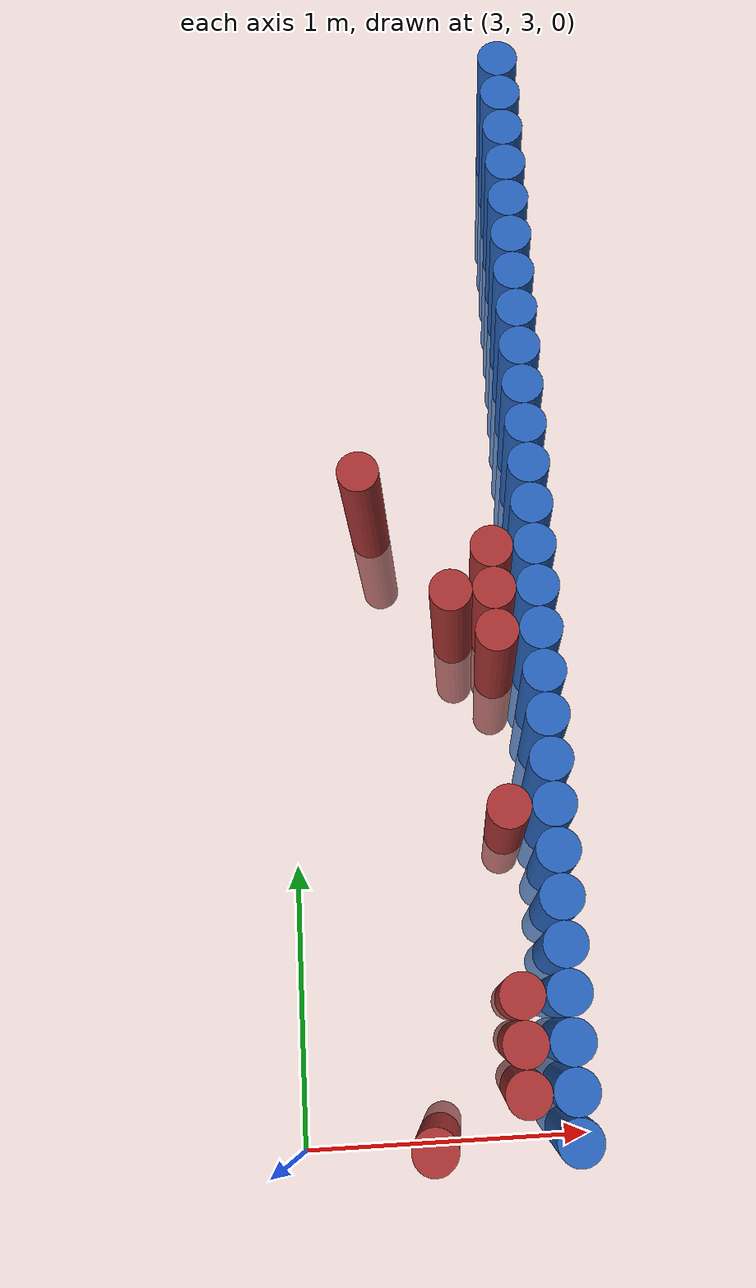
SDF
<sdf version="1.6">
 <world name="default">
  <model name="ground_plane">
   <static>1</static>
   <link name="link">
    <collision name="collision">
     <geometry><plane><normal>0 0 1</normal><size>100 100</size></plane></geometry>
     <surface><friction><ode><mu>100</mu><mu2>50</mu2></ode></friction></surface>
    </collision>
    <visual name="visual">
     <cast_shadows>0</cast_shadows>
     <geometry><plane><normal>0 0 1</normal><size>100 100</size></plane></geometry>
     <material>
      <script><uri>file://media/materials/scripts/gazebo.material</uri><name>Gazebo/Grey</name></script>
     </material>
    </visual>
   </link>
  </model>
  <model name="unit_cylinder_154">
   <static>1</static>
   <pose>3.925000 3.025000 0.000000 0.000000 0.000000 0.000000</pose>
   <link name="link">
    <inertial>
     <mass>1</mass>
     <inertia><ixx>0.145833</ixx><ixy>0</ixy><ixz>0</ixz><iyy>0.145833</iyy><iyz>0</iyz><izz>0.125</izz></inertia>
    </inertial>
    <collision name="collision">
     <geometry><cylinder><radius>0.075000</radius><length>1.5</length></cylinder></geometry>
    </collision>
    <visual name="visual">
     <geometry><cylinder><radius>0.075000</radius><length>1.5</length></cylinder></geometry>
     <material>
      <ambient>0.152000 0.379000 0.720000 1</ambient>
      <diffuse>0.152000 0.379000 0.720000 1</diffuse>
     </material>
     <material>
      <script><name>Gazebo/Grey</name><uri>file://media/materials/scripts/gazebo.material</uri></script>
     </material>
    </visual>
   </link>
  </model>
  <model name="unit_cylinder_156">
   <static>1</static>
   <pose>3.925000 3.175000 0.000000 0.000000 0.000000 0.000000</pose>
   <link name="link">
    <inertial>
     <mass>1</mass>
     <inertia><ixx>0.145833</ixx><ixy>0</ixy><ixz>0</ixz><iyy>0.145833</iyy><iyz>0</iyz><izz>0.125</izz></inertia>
    </inertial>
    <collision name="collision">
     <geometry><cylinder><radius>0.075000</radius><length>1.5</length></cylinder></geometry>
    </collision>
    <visual name="visual">
     <geometry><cylinder><radius>0.075000</radius><length>1.5</length></cylinder></geometry>
     <material>
      <ambient>0.152000 0.379000 0.720000 1</ambient>
      <diffuse>0.152000 0.379000 0.720000 1</diffuse>
     </material>
     <material>
      <script><name>Gazebo/Grey</name><uri>file://media/materials/scripts/gazebo.material</uri></script>
     </material>
    </visual>
   </link>
  </model>
  <model name="unit_cylinder_158">
   <static>1</static>
   <pose>3.925000 3.325000 0.000000 0.000000 0.000000 0.000000</pose>
   <link name="link">
    <inertial>
     <mass>1</mass>
     <inertia><ixx>0.145833</ixx><ixy>0</ixy><ixz>0</ixz><iyy>0.145833</iyy><iyz>0</iyz><izz>0.125</izz></inertia>
    </inertial>
    <collision name="collision">
     <geometry><cylinder><radius>0.075000</radius><length>1.5</length></cylinder></geometry>
    </collision>
    <visual name="visual">
     <geometry><cylinder><radius>0.075000</radius><length>1.5</length></cylinder></geometry>
     <material>
      <ambient>0.152000 0.379000 0.720000 1</ambient>
      <diffuse>0.152000 0.379000 0.720000 1</diffuse>
     </material>
     <material>
      <script><name>Gazebo/Grey</name><uri>file://media/materials/scripts/gazebo.material</uri></script>
     </material>
    </visual>
   </link>
  </model>
  <model name="unit_cylinder_160">
   <static>1</static>
   <pose>3.925000 3.475000 0.000000 0.000000 0.000000 0.000000</pose>
   <link name="link">
    <inertial>
     <mass>1</mass>
     <inertia><ixx>0.145833</ixx><ixy>0</ixy><ixz>0</ixz><iyy>0.145833</iyy><iyz>0</iyz><izz>0.125</izz></inertia>
    </inertial>
    <collision name="collision">
     <geometry><cylinder><radius>0.075000</radius><length>1.5</length></cylinder></geometry>
    </collision>
    <visual name="visual">
     <geometry><cylinder><radius>0.075000</radius><length>1.5</length></cylinder></geometry>
     <material>
      <ambient>0.152000 0.379000 0.720000 1</ambient>
      <diffuse>0.152000 0.379000 0.720000 1</diffuse>
     </material>
     <material>
      <script><name>Gazebo/Grey</name><uri>file://media/materials/scripts/gazebo.material</uri></script>
     </material>
    </visual>
   </link>
  </model>
  <model name="unit_cylinder_162">
   <static>1</static>
   <pose>3.925000 3.625000 0.000000 0.000000 0.000000 0.000000</pose>
   <link name="link">
    <inertial>
     <mass>1</mass>
     <inertia><ixx>0.145833</ixx><ixy>0</ixy><ixz>0</ixz><iyy>0.145833</iyy><iyz>0</iyz><izz>0.125</izz></inertia>
    </inertial>
    <collision name="collision">
     <geometry><cylinder><radius>0.075000</radius><length>1.5</length></cylinder></geometry>
    </collision>
    <visual name="visual">
     <geometry><cylinder><radius>0.075000</radius><length>1.5</length></cylinder></geometry>
     <material>
      <ambient>0.152000 0.379000 0.720000 1</ambient>
      <diffuse>0.152000 0.379000 0.720000 1</diffuse>
     </material>
     <material>
      <script><name>Gazebo/Grey</name><uri>file://media/materials/scripts/gazebo.material</uri></script>
     </material>
    </visual>
   </link>
  </model>
  <model name="unit_cylinder_164">
   <static>1</static>
   <pose>3.925000 3.775000 0.000000 0.000000 0.000000 0.000000</pose>
   <link name="link">
    <inertial>
     <mass>1</mass>
     <inertia><ixx>0.145833</ixx><ixy>0</ixy><ixz>0</ixz><iyy>0.145833</iyy><iyz>0</iyz><izz>0.125</izz></inertia>
    </inertial>
    <collision name="collision">
     <geometry><cylinder><radius>0.075000</radius><length>1.5</length></cylinder></geometry>
    </collision>
    <visual name="visual">
     <geometry><cylinder><radius>0.075000</radius><length>1.5</length></cylinder></geometry>
     <material>
      <ambient>0.152000 0.379000 0.720000 1</ambient>
      <diffuse>0.152000 0.379000 0.720000 1</diffuse>
     </material>
     <material>
      <script><name>Gazebo/Grey</name><uri>file://media/materials/scripts/gazebo.material</uri></script>
     </material>
    </visual>
   </link>
  </model>
  <model name="unit_cylinder_166">
   <static>1</static>
   <pose>3.925000 3.925000 0.000000 0.000000 0.000000 0.000000</pose>
   <link name="link">
    <inertial>
     <mass>1</mass>
     <inertia><ixx>0.145833</ixx><ixy>0</ixy><ixz>0</ixz><iyy>0.145833</iyy><iyz>0</iyz><izz>0.125</izz></inertia>
    </inertial>
    <collision name="collision">
     <geometry><cylinder><radius>0.075000</radius><length>1.5</length></cylinder></geometry>
    </collision>
    <visual name="visual">
     <geometry><cylinder><radius>0.075000</radius><length>1.5</length></cylinder></geometry>
     <material>
      <ambient>0.152000 0.379000 0.720000 1</ambient>
      <diffuse>0.152000 0.379000 0.720000 1</diffuse>
     </material>
     <material>
      <script><name>Gazebo/Grey</name><uri>file://media/materials/scripts/gazebo.material</uri></script>
     </material>
    </visual>
   </link>
  </model>
  <model name="unit_cylinder_168">
   <static>1</static>
   <pose>3.925000 4.075000 0.000000 0.000000 0.000000 0.000000</pose>
   <link name="link">
    <inertial>
     <mass>1</mass>
     <inertia><ixx>0.145833</ixx><ixy>0</ixy><ixz>0</ixz><iyy>0.145833</iyy><iyz>0</iyz><izz>0.125</izz></inertia>
    </inertial>
    <collision name="collision">
     <geometry><cylinder><radius>0.075000</radius><length>1.5</length></cylinder></geometry>
    </collision>
    <visual name="visual">
     <geometry><cylinder><radius>0.075000</radius><length>1.5</length></cylinder></geometry>
     <material>
      <ambient>0.152000 0.379000 0.720000 1</ambient>
      <diffuse>0.152000 0.379000 0.720000 1</diffuse>
     </material>
     <material>
      <script><name>Gazebo/Grey</name><uri>file://media/materials/scripts/gazebo.material</uri></script>
     </material>
    </visual>
   </link>
  </model>
  <model name="unit_cylinder_170">
   <static>1</static>
   <pose>3.925000 4.225000 0.000000 0.000000 0.000000 0.000000</pose>
   <link name="link">
    <inertial>
     <mass>1</mass>
     <inertia><ixx>0.145833</ixx><ixy>0</ixy><ixz>0</ixz><iyy>0.145833</iyy><iyz>0</iyz><izz>0.125</izz></inertia>
    </inertial>
    <collision name="collision">
     <geometry><cylinder><radius>0.075000</radius><length>1.5</length></cylinder></geometry>
    </collision>
    <visual name="visual">
     <geometry><cylinder><radius>0.075000</radius><length>1.5</length></cylinder></geometry>
     <material>
      <ambient>0.152000 0.379000 0.720000 1</ambient>
      <diffuse>0.152000 0.379000 0.720000 1</diffuse>
     </material>
     <material>
      <script><name>Gazebo/Grey</name><uri>file://media/materials/scripts/gazebo.material</uri></script>
     </material>
    </visual>
   </link>
  </model>
  <model name="unit_cylinder_172">
   <static>1</static>
   <pose>3.925000 4.375000 0.000000 0.000000 0.000000 0.000000</pose>
   <link name="link">
    <inertial>
     <mass>1</mass>
     <inertia><ixx>0.145833</ixx><ixy>0</ixy><ixz>0</ixz><iyy>0.145833</iyy><iyz>0</iyz><izz>0.125</izz></inertia>
    </inertial>
    <collision name="collision">
     <geometry><cylinder><radius>0.075000</radius><length>1.5</length></cylinder></geometry>
    </collision>
    <visual name="visual">
     <geometry><cylinder><radius>0.075000</radius><length>1.5</length></cylinder></geometry>
     <material>
      <ambient>0.152000 0.379000 0.720000 1</ambient>
      <diffuse>0.152000 0.379000 0.720000 1</diffuse>
     </material>
     <material>
      <script><name>Gazebo/Grey</name><uri>file://media/materials/scripts/gazebo.material</uri></script>
     </material>
    </visual>
   </link>
  </model>
  <model name="unit_cylinder_174">
   <static>1</static>
   <pose>3.925000 4.525000 0.000000 0.000000 0.000000 0.000000</pose>
   <link name="link">
    <inertial>
     <mass>1</mass>
     <inertia><ixx>0.145833</ixx><ixy>0</ixy><ixz>0</ixz><iyy>0.145833</iyy><iyz>0</iyz><izz>0.125</izz></inertia>
    </inertial>
    <collision name="collision">
     <geometry><cylinder><radius>0.075000</radius><length>1.5</length></cylinder></geometry>
    </collision>
    <visual name="visual">
     <geometry><cylinder><radius>0.075000</radius><length>1.5</length></cylinder></geometry>
     <material>
      <ambient>0.152000 0.379000 0.720000 1</ambient>
      <diffuse>0.152000 0.379000 0.720000 1</diffuse>
     </material>
     <material>
      <script><name>Gazebo/Grey</name><uri>file://media/materials/scripts/gazebo.material</uri></script>
     </material>
    </visual>
   </link>
  </model>
  <model name="unit_cylinder_176">
   <static>1</static>
   <pose>3.925000 4.675000 0.000000 0.000000 0.000000 0.000000</pose>
   <link name="link">
    <inertial>
     <mass>1</mass>
     <inertia><ixx>0.145833</ixx><ixy>0</ixy><ixz>0</ixz><iyy>0.145833</iyy><iyz>0</iyz><izz>0.125</izz></inertia>
    </inertial>
    <collision name="collision">
     <geometry><cylinder><radius>0.075000</radius><length>1.5</length></cylinder></geometry>
    </collision>
    <visual name="visual">
     <geometry><cylinder><radius>0.075000</radius><length>1.5</length></cylinder></geometry>
     <material>
      <ambient>0.152000 0.379000 0.720000 1</ambient>
      <diffuse>0.152000 0.379000 0.720000 1</diffuse>
     </material>
     <material>
      <script><name>Gazebo/Grey</name><uri>file://media/materials/scripts/gazebo.material</uri></script>
     </material>
    </visual>
   </link>
  </model>
  <model name="unit_cylinder_178">
   <static>1</static>
   <pose>3.925000 4.825000 0.000000 0.000000 0.000000 0.000000</pose>
   <link name="link">
    <inertial>
     <mass>1</mass>
     <inertia><ixx>0.145833</ixx><ixy>0</ixy><ixz>0</ixz><iyy>0.145833</iyy><iyz>0</iyz><izz>0.125</izz></inertia>
    </inertial>
    <collision name="collision">
     <geometry><cylinder><radius>0.075000</radius><length>1.5</length></cylinder></geometry>
    </collision>
    <visual name="visual">
     <geometry><cylinder><radius>0.075000</radius><length>1.5</length></cylinder></geometry>
     <material>
      <ambient>0.152000 0.379000 0.720000 1</ambient>
      <diffuse>0.152000 0.379000 0.720000 1</diffuse>
     </material>
     <material>
      <script><name>Gazebo/Grey</name><uri>file://media/materials/scripts/gazebo.material</uri></script>
     </material>
    </visual>
   </link>
  </model>
  <model name="unit_cylinder_180">
   <static>1</static>
   <pose>3.925000 4.975000 0.000000 0.000000 0.000000 0.000000</pose>
   <link name="link">
    <inertial>
     <mass>1</mass>
     <inertia><ixx>0.145833</ixx><ixy>0</ixy><ixz>0</ixz><iyy>0.145833</iyy><iyz>0</iyz><izz>0.125</izz></inertia>
    </inertial>
    <collision name="collision">
     <geometry><cylinder><radius>0.075000</radius><length>1.5</length></cylinder></geometry>
    </collision>
    <visual name="visual">
     <geometry><cylinder><radius>0.075000</radius><length>1.5</length></cylinder></geometry>
     <material>
      <ambient>0.152000 0.379000 0.720000 1</ambient>
      <diffuse>0.152000 0.379000 0.720000 1</diffuse>
     </material>
     <material>
      <script><name>Gazebo/Grey</name><uri>file://media/materials/scripts/gazebo.material</uri></script>
     </material>
    </visual>
   </link>
  </model>
  <model name="unit_cylinder_182">
   <static>1</static>
   <pose>3.925000 5.125000 0.000000 0.000000 0.000000 0.000000</pose>
   <link name="link">
    <inertial>
     <mass>1</mass>
     <inertia><ixx>0.145833</ixx><ixy>0</ixy><ixz>0</ixz><iyy>0.145833</iyy><iyz>0</iyz><izz>0.125</izz></inertia>
    </inertial>
    <collision name="collision">
     <geometry><cylinder><radius>0.075000</radius><length>1.5</length></cylinder></geometry>
    </collision>
    <visual name="visual">
     <geometry><cylinder><radius>0.075000</radius><length>1.5</length></cylinder></geometry>
     <material>
      <ambient>0.152000 0.379000 0.720000 1</ambient>
      <diffuse>0.152000 0.379000 0.720000 1</diffuse>
     </material>
     <material>
      <script><name>Gazebo/Grey</name><uri>file://media/materials/scripts/gazebo.material</uri></script>
     </material>
    </visual>
   </link>
  </model>
  <model name="unit_cylinder_184">
   <static>1</static>
   <pose>3.925000 5.275000 0.000000 0.000000 0.000000 0.000000</pose>
   <link name="link">
    <inertial>
     <mass>1</mass>
     <inertia><ixx>0.145833</ixx><ixy>0</ixy><ixz>0</ixz><iyy>0.145833</iyy><iyz>0</iyz><izz>0.125</izz></inertia>
    </inertial>
    <collision name="collision">
     <geometry><cylinder><radius>0.075000</radius><length>1.5</length></cylinder></geometry>
    </collision>
    <visual name="visual">
     <geometry><cylinder><radius>0.075000</radius><length>1.5</length></cylinder></geometry>
     <material>
      <ambient>0.152000 0.379000 0.720000 1</ambient>
      <diffuse>0.152000 0.379000 0.720000 1</diffuse>
     </material>
     <material>
      <script><name>Gazebo/Grey</name><uri>file://media/materials/scripts/gazebo.material</uri></script>
     </material>
    </visual>
   </link>
  </model>
  <model name="unit_cylinder_186">
   <static>1</static>
   <pose>3.925000 5.425000 0.000000 0.000000 0.000000 0.000000</pose>
   <link name="link">
    <inertial>
     <mass>1</mass>
     <inertia><ixx>0.145833</ixx><ixy>0</ixy><ixz>0</ixz><iyy>0.145833</iyy><iyz>0</iyz><izz>0.125</izz></inertia>
    </inertial>
    <collision name="collision">
     <geometry><cylinder><radius>0.075000</radius><length>1.5</length></cylinder></geometry>
    </collision>
    <visual name="visual">
     <geometry><cylinder><radius>0.075000</radius><length>1.5</length></cylinder></geometry>
     <material>
      <ambient>0.152000 0.379000 0.720000 1</ambient>
      <diffuse>0.152000 0.379000 0.720000 1</diffuse>
     </material>
     <material>
      <script><name>Gazebo/Grey</name><uri>file://media/materials/scripts/gazebo.material</uri></script>
     </material>
    </visual>
   </link>
  </model>
  <model name="unit_cylinder_188">
   <static>1</static>
   <pose>3.925000 5.575000 0.000000 0.000000 0.000000 0.000000</pose>
   <link name="link">
    <inertial>
     <mass>1</mass>
     <inertia><ixx>0.145833</ixx><ixy>0</ixy><ixz>0</ixz><iyy>0.145833</iyy><iyz>0</iyz><izz>0.125</izz></inertia>
    </inertial>
    <collision name="collision">
     <geometry><cylinder><radius>0.075000</radius><length>1.5</length></cylinder></geometry>
    </collision>
    <visual name="visual">
     <geometry><cylinder><radius>0.075000</radius><length>1.5</length></cylinder></geometry>
     <material>
      <ambient>0.152000 0.379000 0.720000 1</ambient>
      <diffuse>0.152000 0.379000 0.720000 1</diffuse>
     </material>
     <material>
      <script><name>Gazebo/Grey</name><uri>file://media/materials/scripts/gazebo.material</uri></script>
     </material>
    </visual>
   </link>
  </model>
  <model name="unit_cylinder_190">
   <static>1</static>
   <pose>3.925000 5.725000 0.000000 0.000000 0.000000 0.000000</pose>
   <link name="link">
    <inertial>
     <mass>1</mass>
     <inertia><ixx>0.145833</ixx><ixy>0</ixy><ixz>0</ixz><iyy>0.145833</iyy><iyz>0</iyz><izz>0.125</izz></inertia>
    </inertial>
    <collision name="collision">
     <geometry><cylinder><radius>0.075000</radius><length>1.5</length></cylinder></geometry>
    </collision>
    <visual name="visual">
     <geometry><cylinder><radius>0.075000</radius><length>1.5</length></cylinder></geometry>
     <material>
      <ambient>0.152000 0.379000 0.720000 1</ambient>
      <diffuse>0.152000 0.379000 0.720000 1</diffuse>
     </material>
     <material>
      <script><name>Gazebo/Grey</name><uri>file://media/materials/scripts/gazebo.material</uri></script>
     </material>
    </visual>
   </link>
  </model>
  <model name="unit_cylinder_192">
   <static>1</static>
   <pose>3.925000 5.875000 0.000000 0.000000 0.000000 0.000000</pose>
   <link name="link">
    <inertial>
     <mass>1</mass>
     <inertia><ixx>0.145833</ixx><ixy>0</ixy><ixz>0</ixz><iyy>0.145833</iyy><iyz>0</iyz><izz>0.125</izz></inertia>
    </inertial>
    <collision name="collision">
     <geometry><cylinder><radius>0.075000</radius><length>1.5</length></cylinder></geometry>
    </collision>
    <visual name="visual">
     <geometry><cylinder><radius>0.075000</radius><length>1.5</length></cylinder></geometry>
     <material>
      <ambient>0.152000 0.379000 0.720000 1</ambient>
      <diffuse>0.152000 0.379000 0.720000 1</diffuse>
     </material>
     <material>
      <script><name>Gazebo/Grey</name><uri>file://media/materials/scripts/gazebo.material</uri></script>
     </material>
    </visual>
   </link>
  </model>
  <model name="unit_cylinder_194">
   <static>1</static>
   <pose>3.925000 6.025000 0.000000 0.000000 0.000000 0.000000</pose>
   <link name="link">
    <inertial>
     <mass>1</mass>
     <inertia><ixx>0.145833</ixx><ixy>0</ixy><ixz>0</ixz><iyy>0.145833</iyy><iyz>0</iyz><izz>0.125</izz></inertia>
    </inertial>
    <collision name="collision">
     <geometry><cylinder><radius>0.075000</radius><length>1.5</length></cylinder></geometry>
    </collision>
    <visual name="visual">
     <geometry><cylinder><radius>0.075000</radius><length>1.5</length></cylinder></geometry>
     <material>
      <ambient>0.152000 0.379000 0.720000 1</ambient>
      <diffuse>0.152000 0.379000 0.720000 1</diffuse>
     </material>
     <material>
      <script><name>Gazebo/Grey</name><uri>file://media/materials/scripts/gazebo.material</uri></script>
     </material>
    </visual>
   </link>
  </model>
  <model name="unit_cylinder_196">
   <static>1</static>
   <pose>3.925000 6.175000 0.000000 0.000000 0.000000 0.000000</pose>
   <link name="link">
    <inertial>
     <mass>1</mass>
     <inertia><ixx>0.145833</ixx><ixy>0</ixy><ixz>0</ixz><iyy>0.145833</iyy><iyz>0</iyz><izz>0.125</izz></inertia>
    </inertial>
    <collision name="collision">
     <geometry><cylinder><radius>0.075000</radius><length>1.5</length></cylinder></geometry>
    </collision>
    <visual name="visual">
     <geometry><cylinder><radius>0.075000</radius><length>1.5</length></cylinder></geometry>
     <material>
      <ambient>0.152000 0.379000 0.720000 1</ambient>
      <diffuse>0.152000 0.379000 0.720000 1</diffuse>
     </material>
     <material>
      <script><name>Gazebo/Grey</name><uri>file://media/materials/scripts/gazebo.material</uri></script>
     </material>
    </visual>
   </link>
  </model>
  <model name="unit_cylinder_198">
   <static>1</static>
   <pose>3.925000 6.325000 0.000000 0.000000 0.000000 0.000000</pose>
   <link name="link">
    <inertial>
     <mass>1</mass>
     <inertia><ixx>0.145833</ixx><ixy>0</ixy><ixz>0</ixz><iyy>0.145833</iyy><iyz>0</iyz><izz>0.125</izz></inertia>
    </inertial>
    <collision name="collision">
     <geometry><cylinder><radius>0.075000</radius><length>1.5</length></cylinder></geometry>
    </collision>
    <visual name="visual">
     <geometry><cylinder><radius>0.075000</radius><length>1.5</length></cylinder></geometry>
     <material>
      <ambient>0.152000 0.379000 0.720000 1</ambient>
      <diffuse>0.152000 0.379000 0.720000 1</diffuse>
     </material>
     <material>
      <script><name>Gazebo/Grey</name><uri>file://media/materials/scripts/gazebo.material</uri></script>
     </material>
    </visual>
   </link>
  </model>
  <model name="unit_cylinder_200">
   <static>1</static>
   <pose>3.925000 6.475000 0.000000 0.000000 0.000000 0.000000</pose>
   <link name="link">
    <inertial>
     <mass>1</mass>
     <inertia><ixx>0.145833</ixx><ixy>0</ixy><ixz>0</ixz><iyy>0.145833</iyy><iyz>0</iyz><izz>0.125</izz></inertia>
    </inertial>
    <collision name="collision">
     <geometry><cylinder><radius>0.075000</radius><length>1.5</length></cylinder></geometry>
    </collision>
    <visual name="visual">
     <geometry><cylinder><radius>0.075000</radius><length>1.5</length></cylinder></geometry>
     <material>
      <ambient>0.152000 0.379000 0.720000 1</ambient>
      <diffuse>0.152000 0.379000 0.720000 1</diffuse>
     </material>
     <material>
      <script><name>Gazebo/Grey</name><uri>file://media/materials/scripts/gazebo.material</uri></script>
     </material>
    </visual>
   </link>
  </model>
  <model name="unit_cylinder_202">
   <static>1</static>
   <pose>3.925000 6.625000 0.000000 0.000000 0.000000 0.000000</pose>
   <link name="link">
    <inertial>
     <mass>1</mass>
     <inertia><ixx>0.145833</ixx><ixy>0</ixy><ixz>0</ixz><iyy>0.145833</iyy><iyz>0</iyz><izz>0.125</izz></inertia>
    </inertial>
    <collision name="collision">
     <geometry><cylinder><radius>0.075000</radius><length>1.5</length></cylinder></geometry>
    </collision>
    <visual name="visual">
     <geometry><cylinder><radius>0.075000</radius><length>1.5</length></cylinder></geometry>
     <material>
      <ambient>0.152000 0.379000 0.720000 1</ambient>
      <diffuse>0.152000 0.379000 0.720000 1</diffuse>
     </material>
     <material>
      <script><name>Gazebo/Grey</name><uri>file://media/materials/scripts/gazebo.material</uri></script>
     </material>
    </visual>
   </link>
  </model>
  <model name="unit_cylinder_204">
   <static>1</static>
   <pose>3.925000 6.775000 0.000000 0.000000 0.000000 0.000000</pose>
   <link name="link">
    <inertial>
     <mass>1</mass>
     <inertia><ixx>0.145833</ixx><ixy>0</ixy><ixz>0</ixz><iyy>0.145833</iyy><iyz>0</iyz><izz>0.125</izz></inertia>
    </inertial>
    <collision name="collision">
     <geometry><cylinder><radius>0.075000</radius><length>1.5</length></cylinder></geometry>
    </collision>
    <visual name="visual">
     <geometry><cylinder><radius>0.075000</radius><length>1.5</length></cylinder></geometry>
     <material>
      <ambient>0.152000 0.379000 0.720000 1</ambient>
      <diffuse>0.152000 0.379000 0.720000 1</diffuse>
     </material>
     <material>
      <script><name>Gazebo/Grey</name><uri>file://media/materials/scripts/gazebo.material</uri></script>
     </material>
    </visual>
   </link>
  </model>
  <model name="unit_cylinder_206">
   <static>1</static>
   <pose>3.925000 6.925000 0.000000 0.000000 0.000000 0.000000</pose>
   <link name="link">
    <inertial>
     <mass>1</mass>
     <inertia><ixx>0.145833</ixx><ixy>0</ixy><ixz>0</ixz><iyy>0.145833</iyy><iyz>0</iyz><izz>0.125</izz></inertia>
    </inertial>
    <collision name="collision">
     <geometry><cylinder><radius>0.075000</radius><length>1.5</length></cylinder></geometry>
    </collision>
    <visual name="visual">
     <geometry><cylinder><radius>0.075000</radius><length>1.5</length></cylinder></geometry>
     <material>
      <ambient>0.152000 0.379000 0.720000 1</ambient>
      <diffuse>0.152000 0.379000 0.720000 1</diffuse>
     </material>
     <material>
      <script><name>Gazebo/Grey</name><uri>file://media/materials/scripts/gazebo.material</uri></script>
     </material>
    </visual>
   </link>
  </model>
  <model name="unit_cylinder_510">
   <static>1</static>
   <pose>3.325000 5.275000 0.000000 0.000000 0.000000 0.000000</pose>
   <link name="link">
    <inertial>
     <mass>1</mass>
     <inertia><ixx>0.145833</ixx><ixy>0</ixy><ixz>0</ixz><iyy>0.145833</iyy><iyz>0</iyz><izz>0.125</izz></inertia>
    </inertial>
    <collision name="collision">
     <geometry><cylinder><radius>0.075000</radius><length>1.5</length></cylinder></geometry>
    </collision>
    <visual name="visual">
     <geometry><cylinder><radius>0.075000</radius><length>1.5</length></cylinder></geometry>
     <material>
      <ambient>0.648000 0.192000 0.192000 1</ambient>
      <diffuse>0.648000 0.192000 0.192000 1</diffuse>
     </material>
     <material>
      <script><name>Gazebo/Grey</name><uri>file://media/materials/scripts/gazebo.material</uri></script>
     </material>
    </visual>
   </link>
  </model>
  <model name="unit_cylinder_512">
   <static>1</static>
   <pose>3.475000 3.025000 0.000000 0.000000 0.000000 0.000000</pose>
   <link name="link">
    <inertial>
     <mass>1</mass>
     <inertia><ixx>0.145833</ixx><ixy>0</ixy><ixz>0</ixz><iyy>0.145833</iyy><iyz>0</iyz><izz>0.125</izz></inertia>
    </inertial>
    <collision name="collision">
     <geometry><cylinder><radius>0.075000</radius><length>1.5</length></cylinder></geometry>
    </collision>
    <visual name="visual">
     <geometry><cylinder><radius>0.075000</radius><length>1.5</length></cylinder></geometry>
     <material>
      <ambient>0.648000 0.192000 0.192000 1</ambient>
      <diffuse>0.648000 0.192000 0.192000 1</diffuse>
     </material>
     <material>
      <script><name>Gazebo/Grey</name><uri>file://media/materials/scripts/gazebo.material</uri></script>
     </material>
    </visual>
   </link>
  </model>
  <model name="unit_cylinder_516">
   <static>1</static>
   <pose>3.625000 4.825000 0.000000 0.000000 0.000000 0.000000</pose>
   <link name="link">
    <inertial>
     <mass>1</mass>
     <inertia><ixx>0.145833</ixx><ixy>0</ixy><ixz>0</ixz><iyy>0.145833</iyy><iyz>0</iyz><izz>0.125</izz></inertia>
    </inertial>
    <collision name="collision">
     <geometry><cylinder><radius>0.075000</radius><length>1.5</length></cylinder></geometry>
    </collision>
    <visual name="visual">
     <geometry><cylinder><radius>0.075000</radius><length>1.5</length></cylinder></geometry>
     <material>
      <ambient>0.648000 0.192000 0.192000 1</ambient>
      <diffuse>0.648000 0.192000 0.192000 1</diffuse>
     </material>
     <material>
      <script><name>Gazebo/Grey</name><uri>file://media/materials/scripts/gazebo.material</uri></script>
     </material>
    </visual>
   </link>
  </model>
  <model name="unit_cylinder_535">
   <static>1</static>
   <pose>3.775000 3.175000 0.000000 0.000000 0.000000 0.000000</pose>
   <link name="link">
    <inertial>
     <mass>1</mass>
     <inertia><ixx>0.145833</ixx><ixy>0</ixy><ixz>0</ixz><iyy>0.145833</iyy><iyz>0</iyz><izz>0.125</izz></inertia>
    </inertial>
    <collision name="collision">
     <geometry><cylinder><radius>0.075000</radius><length>1.5</length></cylinder></geometry>
    </collision>
    <visual name="visual">
     <geometry><cylinder><radius>0.075000</radius><length>1.5</length></cylinder></geometry>
     <material>
      <ambient>0.648000 0.192000 0.192000 1</ambient>
      <diffuse>0.648000 0.192000 0.192000 1</diffuse>
     </material>
     <material>
      <script><name>Gazebo/Grey</name><uri>file://media/materials/scripts/gazebo.material</uri></script>
     </material>
    </visual>
   </link>
  </model>
  <model name="unit_cylinder_536">
   <static>1</static>
   <pose>3.775000 3.325000 0.000000 0.000000 0.000000 0.000000</pose>
   <link name="link">
    <inertial>
     <mass>1</mass>
     <inertia><ixx>0.145833</ixx><ixy>0</ixy><ixz>0</ixz><iyy>0.145833</iyy><iyz>0</iyz><izz>0.125</izz></inertia>
    </inertial>
    <collision name="collision">
     <geometry><cylinder><radius>0.075000</radius><length>1.5</length></cylinder></geometry>
    </collision>
    <visual name="visual">
     <geometry><cylinder><radius>0.075000</radius><length>1.5</length></cylinder></geometry>
     <material>
      <ambient>0.648000 0.192000 0.192000 1</ambient>
      <diffuse>0.648000 0.192000 0.192000 1</diffuse>
     </material>
     <material>
      <script><name>Gazebo/Grey</name><uri>file://media/materials/scripts/gazebo.material</uri></script>
     </material>
    </visual>
   </link>
  </model>
  <model name="unit_cylinder_537">
   <static>1</static>
   <pose>3.775000 3.475000 0.000000 0.000000 0.000000 0.000000</pose>
   <link name="link">
    <inertial>
     <mass>1</mass>
     <inertia><ixx>0.145833</ixx><ixy>0</ixy><ixz>0</ixz><iyy>0.145833</iyy><iyz>0</iyz><izz>0.125</izz></inertia>
    </inertial>
    <collision name="collision">
     <geometry><cylinder><radius>0.075000</radius><length>1.5</length></cylinder></geometry>
    </collision>
    <visual name="visual">
     <geometry><cylinder><radius>0.075000</radius><length>1.5</length></cylinder></geometry>
     <material>
      <ambient>0.648000 0.192000 0.192000 1</ambient>
      <diffuse>0.648000 0.192000 0.192000 1</diffuse>
     </material>
     <material>
      <script><name>Gazebo/Grey</name><uri>file://media/materials/scripts/gazebo.material</uri></script>
     </material>
    </visual>
   </link>
  </model>
  <model name="unit_cylinder_538">
   <static>1</static>
   <pose>3.775000 4.075000 0.000000 0.000000 0.000000 0.000000</pose>
   <link name="link">
    <inertial>
     <mass>1</mass>
     <inertia><ixx>0.145833</ixx><ixy>0</ixy><ixz>0</ixz><iyy>0.145833</iyy><iyz>0</iyz><izz>0.125</izz></inertia>
    </inertial>
    <collision name="collision">
     <geometry><cylinder><radius>0.075000</radius><length>1.5</length></cylinder></geometry>
    </collision>
    <visual name="visual">
     <geometry><cylinder><radius>0.075000</radius><length>1.5</length></cylinder></geometry>
     <material>
      <ambient>0.648000 0.192000 0.192000 1</ambient>
      <diffuse>0.648000 0.192000 0.192000 1</diffuse>
     </material>
     <material>
      <script><name>Gazebo/Grey</name><uri>file://media/materials/scripts/gazebo.material</uri></script>
     </material>
    </visual>
   </link>
  </model>
  <model name="unit_cylinder_539">
   <static>1</static>
   <pose>3.775000 4.675000 0.000000 0.000000 0.000000 0.000000</pose>
   <link name="link">
    <inertial>
     <mass>1</mass>
     <inertia><ixx>0.145833</ixx><ixy>0</ixy><ixz>0</ixz><iyy>0.145833</iyy><iyz>0</iyz><izz>0.125</izz></inertia>
    </inertial>
    <collision name="collision">
     <geometry><cylinder><radius>0.075000</radius><length>1.5</length></cylinder></geometry>
    </collision>
    <visual name="visual">
     <geometry><cylinder><radius>0.075000</radius><length>1.5</length></cylinder></geometry>
     <material>
      <ambient>0.648000 0.192000 0.192000 1</ambient>
      <diffuse>0.648000 0.192000 0.192000 1</diffuse>
     </material>
     <material>
      <script><name>Gazebo/Grey</name><uri>file://media/materials/scripts/gazebo.material</uri></script>
     </material>
    </visual>
   </link>
  </model>
  <model name="unit_cylinder_540">
   <static>1</static>
   <pose>3.775000 4.825000 0.000000 0.000000 0.000000 0.000000</pose>
   <link name="link">
    <inertial>
     <mass>1</mass>
     <inertia><ixx>0.145833</ixx><ixy>0</ixy><ixz>0</ixz><iyy>0.145833</iyy><iyz>0</iyz><izz>0.125</izz></inertia>
    </inertial>
    <collision name="collision">
     <geometry><cylinder><radius>0.075000</radius><length>1.5</length></cylinder></geometry>
    </collision>
    <visual name="visual">
     <geometry><cylinder><radius>0.075000</radius><length>1.5</length></cylinder></geometry>
     <material>
      <ambient>0.648000 0.192000 0.192000 1</ambient>
      <diffuse>0.648000 0.192000 0.192000 1</diffuse>
     </material>
     <material>
      <script><name>Gazebo/Grey</name><uri>file://media/materials/scripts/gazebo.material</uri></script>
     </material>
    </visual>
   </link>
  </model>
  <model name="unit_cylinder_541">
   <static>1</static>
   <pose>3.775000 4.975000 0.000000 0.000000 0.000000 0.000000</pose>
   <link name="link">
    <inertial>
     <mass>1</mass>
     <inertia><ixx>0.145833</ixx><ixy>0</ixy><ixz>0</ixz><iyy>0.145833</iyy><iyz>0</iyz><izz>0.125</izz></inertia>
    </inertial>
    <collision name="collision">
     <geometry><cylinder><radius>0.075000</radius><length>1.5</length></cylinder></geometry>
    </collision>
    <visual name="visual">
     <geometry><cylinder><radius>0.075000</radius><length>1.5</length></cylinder></geometry>
     <material>
      <ambient>0.648000 0.192000 0.192000 1</ambient>
      <diffuse>0.648000 0.192000 0.192000 1</diffuse>
     </material>
     <material>
      <script><name>Gazebo/Grey</name><uri>file://media/materials/scripts/gazebo.material</uri></script>
     </material>
    </visual>
   </link>
  </model>
  <model name="unit_cylinder_575">
   <static>1</static>
   <pose>3.925000 3.025000 0.000000 0.000000 0.000000 0.000000</pose>
   <link name="link">
    <inertial>
     <mass>1</mass>
     <inertia><ixx>0.145833</ixx><ixy>0</ixy><ixz>0</ixz><iyy>0.145833</iyy><iyz>0</iyz><izz>0.125</izz></inertia>
    </inertial>
    <collision name="collision">
     <geometry><cylinder><radius>0.075000</radius><length>1.5</length></cylinder></geometry>
    </collision>
    <visual name="visual">
     <geometry><cylinder><radius>0.075000</radius><length>1.5</length></cylinder></geometry>
     <material>
      <ambient>0.152000 0.379000 0.720000 1</ambient>
      <diffuse>0.152000 0.379000 0.720000 1</diffuse>
     </material>
     <material>
      <script><name>Gazebo/Grey</name><uri>file://media/materials/scripts/gazebo.material</uri></script>
     </material>
    </visual>
   </link>
  </model>
  <model name="unit_cylinder_576">
   <static>1</static>
   <pose>3.925000 3.175000 0.000000 0.000000 0.000000 0.000000</pose>
   <link name="link">
    <inertial>
     <mass>1</mass>
     <inertia><ixx>0.145833</ixx><ixy>0</ixy><ixz>0</ixz><iyy>0.145833</iyy><iyz>0</iyz><izz>0.125</izz></inertia>
    </inertial>
    <collision name="collision">
     <geometry><cylinder><radius>0.075000</radius><length>1.5</length></cylinder></geometry>
    </collision>
    <visual name="visual">
     <geometry><cylinder><radius>0.075000</radius><length>1.5</length></cylinder></geometry>
     <material>
      <ambient>0.152000 0.379000 0.720000 1</ambient>
      <diffuse>0.152000 0.379000 0.720000 1</diffuse>
     </material>
     <material>
      <script><name>Gazebo/Grey</name><uri>file://media/materials/scripts/gazebo.material</uri></script>
     </material>
    </visual>
   </link>
  </model>
  <model name="unit_cylinder_577">
   <static>1</static>
   <pose>3.925000 3.325000 0.000000 0.000000 0.000000 0.000000</pose>
   <link name="link">
    <inertial>
     <mass>1</mass>
     <inertia><ixx>0.145833</ixx><ixy>0</ixy><ixz>0</ixz><iyy>0.145833</iyy><iyz>0</iyz><izz>0.125</izz></inertia>
    </inertial>
    <collision name="collision">
     <geometry><cylinder><radius>0.075000</radius><length>1.5</length></cylinder></geometry>
    </collision>
    <visual name="visual">
     <geometry><cylinder><radius>0.075000</radius><length>1.5</length></cylinder></geometry>
     <material>
      <ambient>0.152000 0.379000 0.720000 1</ambient>
      <diffuse>0.152000 0.379000 0.720000 1</diffuse>
     </material>
     <material>
      <script><name>Gazebo/Grey</name><uri>file://media/materials/scripts/gazebo.material</uri></script>
     </material>
    </visual>
   </link>
  </model>
  <model name="unit_cylinder_578">
   <static>1</static>
   <pose>3.925000 3.475000 0.000000 0.000000 0.000000 0.000000</pose>
   <link name="link">
    <inertial>
     <mass>1</mass>
     <inertia><ixx>0.145833</ixx><ixy>0</ixy><ixz>0</ixz><iyy>0.145833</iyy><iyz>0</iyz><izz>0.125</izz></inertia>
    </inertial>
    <collision name="collision">
     <geometry><cylinder><radius>0.075000</radius><length>1.5</length></cylinder></geometry>
    </collision>
    <visual name="visual">
     <geometry><cylinder><radius>0.075000</radius><length>1.5</length></cylinder></geometry>
     <material>
      <ambient>0.152000 0.379000 0.720000 1</ambient>
      <diffuse>0.152000 0.379000 0.720000 1</diffuse>
     </material>
     <material>
      <script><name>Gazebo/Grey</name><uri>file://media/materials/scripts/gazebo.material</uri></script>
     </material>
    </visual>
   </link>
  </model>
  <model name="unit_cylinder_579">
   <static>1</static>
   <pose>3.925000 3.625000 0.000000 0.000000 0.000000 0.000000</pose>
   <link name="link">
    <inertial>
     <mass>1</mass>
     <inertia><ixx>0.145833</ixx><ixy>0</ixy><ixz>0</ixz><iyy>0.145833</iyy><iyz>0</iyz><izz>0.125</izz></inertia>
    </inertial>
    <collision name="collision">
     <geometry><cylinder><radius>0.075000</radius><length>1.5</length></cylinder></geometry>
    </collision>
    <visual name="visual">
     <geometry><cylinder><radius>0.075000</radius><length>1.5</length></cylinder></geometry>
     <material>
      <ambient>0.152000 0.379000 0.720000 1</ambient>
      <diffuse>0.152000 0.379000 0.720000 1</diffuse>
     </material>
     <material>
      <script><name>Gazebo/Grey</name><uri>file://media/materials/scripts/gazebo.material</uri></script>
     </material>
    </visual>
   </link>
  </model>
  <model name="unit_cylinder_580">
   <static>1</static>
   <pose>3.925000 3.775000 0.000000 0.000000 0.000000 0.000000</pose>
   <link name="link">
    <inertial>
     <mass>1</mass>
     <inertia><ixx>0.145833</ixx><ixy>0</ixy><ixz>0</ixz><iyy>0.145833</iyy><iyz>0</iyz><izz>0.125</izz></inertia>
    </inertial>
    <collision name="collision">
     <geometry><cylinder><radius>0.075000</radius><length>1.5</length></cylinder></geometry>
    </collision>
    <visual name="visual">
     <geometry><cylinder><radius>0.075000</radius><length>1.5</length></cylinder></geometry>
     <material>
      <ambient>0.152000 0.379000 0.720000 1</ambient>
      <diffuse>0.152000 0.379000 0.720000 1</diffuse>
     </material>
     <material>
      <script><name>Gazebo/Grey</name><uri>file://media/materials/scripts/gazebo.material</uri></script>
     </material>
    </visual>
   </link>
  </model>
  <model name="unit_cylinder_581">
   <static>1</static>
   <pose>3.925000 3.925000 0.000000 0.000000 0.000000 0.000000</pose>
   <link name="link">
    <inertial>
     <mass>1</mass>
     <inertia><ixx>0.145833</ixx><ixy>0</ixy><ixz>0</ixz><iyy>0.145833</iyy><iyz>0</iyz><izz>0.125</izz></inertia>
    </inertial>
    <collision name="collision">
     <geometry><cylinder><radius>0.075000</radius><length>1.5</length></cylinder></geometry>
    </collision>
    <visual name="visual">
     <geometry><cylinder><radius>0.075000</radius><length>1.5</length></cylinder></geometry>
     <material>
      <ambient>0.152000 0.379000 0.720000 1</ambient>
      <diffuse>0.152000 0.379000 0.720000 1</diffuse>
     </material>
     <material>
      <script><name>Gazebo/Grey</name><uri>file://media/materials/scripts/gazebo.material</uri></script>
     </material>
    </visual>
   </link>
  </model>
  <model name="unit_cylinder_582">
   <static>1</static>
   <pose>3.925000 4.075000 0.000000 0.000000 0.000000 0.000000</pose>
   <link name="link">
    <inertial>
     <mass>1</mass>
     <inertia><ixx>0.145833</ixx><ixy>0</ixy><ixz>0</ixz><iyy>0.145833</iyy><iyz>0</iyz><izz>0.125</izz></inertia>
    </inertial>
    <collision name="collision">
     <geometry><cylinder><radius>0.075000</radius><length>1.5</length></cylinder></geometry>
    </collision>
    <visual name="visual">
     <geometry><cylinder><radius>0.075000</radius><length>1.5</length></cylinder></geometry>
     <material>
      <ambient>0.152000 0.379000 0.720000 1</ambient>
      <diffuse>0.152000 0.379000 0.720000 1</diffuse>
     </material>
     <material>
      <script><name>Gazebo/Grey</name><uri>file://media/materials/scripts/gazebo.material</uri></script>
     </material>
    </visual>
   </link>
  </model>
  <model name="unit_cylinder_583">
   <static>1</static>
   <pose>3.925000 4.225000 0.000000 0.000000 0.000000 0.000000</pose>
   <link name="link">
    <inertial>
     <mass>1</mass>
     <inertia><ixx>0.145833</ixx><ixy>0</ixy><ixz>0</ixz><iyy>0.145833</iyy><iyz>0</iyz><izz>0.125</izz></inertia>
    </inertial>
    <collision name="collision">
     <geometry><cylinder><radius>0.075000</radius><length>1.5</length></cylinder></geometry>
    </collision>
    <visual name="visual">
     <geometry><cylinder><radius>0.075000</radius><length>1.5</length></cylinder></geometry>
     <material>
      <ambient>0.152000 0.379000 0.720000 1</ambient>
      <diffuse>0.152000 0.379000 0.720000 1</diffuse>
     </material>
     <material>
      <script><name>Gazebo/Grey</name><uri>file://media/materials/scripts/gazebo.material</uri></script>
     </material>
    </visual>
   </link>
  </model>
  <model name="unit_cylinder_584">
   <static>1</static>
   <pose>3.925000 4.375000 0.000000 0.000000 0.000000 0.000000</pose>
   <link name="link">
    <inertial>
     <mass>1</mass>
     <inertia><ixx>0.145833</ixx><ixy>0</ixy><ixz>0</ixz><iyy>0.145833</iyy><iyz>0</iyz><izz>0.125</izz></inertia>
    </inertial>
    <collision name="collision">
     <geometry><cylinder><radius>0.075000</radius><length>1.5</length></cylinder></geometry>
    </collision>
    <visual name="visual">
     <geometry><cylinder><radius>0.075000</radius><length>1.5</length></cylinder></geometry>
     <material>
      <ambient>0.152000 0.379000 0.720000 1</ambient>
      <diffuse>0.152000 0.379000 0.720000 1</diffuse>
     </material>
     <material>
      <script><name>Gazebo/Grey</name><uri>file://media/materials/scripts/gazebo.material</uri></script>
     </material>
    </visual>
   </link>
  </model>
  <model name="unit_cylinder_585">
   <static>1</static>
   <pose>3.925000 4.525000 0.000000 0.000000 0.000000 0.000000</pose>
   <link name="link">
    <inertial>
     <mass>1</mass>
     <inertia><ixx>0.145833</ixx><ixy>0</ixy><ixz>0</ixz><iyy>0.145833</iyy><iyz>0</iyz><izz>0.125</izz></inertia>
    </inertial>
    <collision name="collision">
     <geometry><cylinder><radius>0.075000</radius><length>1.5</length></cylinder></geometry>
    </collision>
    <visual name="visual">
     <geometry><cylinder><radius>0.075000</radius><length>1.5</length></cylinder></geometry>
     <material>
      <ambient>0.152000 0.379000 0.720000 1</ambient>
      <diffuse>0.152000 0.379000 0.720000 1</diffuse>
     </material>
     <material>
      <script><name>Gazebo/Grey</name><uri>file://media/materials/scripts/gazebo.material</uri></script>
     </material>
    </visual>
   </link>
  </model>
  <model name="unit_cylinder_586">
   <static>1</static>
   <pose>3.925000 4.675000 0.000000 0.000000 0.000000 0.000000</pose>
   <link name="link">
    <inertial>
     <mass>1</mass>
     <inertia><ixx>0.145833</ixx><ixy>0</ixy><ixz>0</ixz><iyy>0.145833</iyy><iyz>0</iyz><izz>0.125</izz></inertia>
    </inertial>
    <collision name="collision">
     <geometry><cylinder><radius>0.075000</radius><length>1.5</length></cylinder></geometry>
    </collision>
    <visual name="visual">
     <geometry><cylinder><radius>0.075000</radius><length>1.5</length></cylinder></geometry>
     <material>
      <ambient>0.152000 0.379000 0.720000 1</ambient>
      <diffuse>0.152000 0.379000 0.720000 1</diffuse>
     </material>
     <material>
      <script><name>Gazebo/Grey</name><uri>file://media/materials/scripts/gazebo.material</uri></script>
     </material>
    </visual>
   </link>
  </model>
  <model name="unit_cylinder_587">
   <static>1</static>
   <pose>3.925000 4.825000 0.000000 0.000000 0.000000 0.000000</pose>
   <link name="link">
    <inertial>
     <mass>1</mass>
     <inertia><ixx>0.145833</ixx><ixy>0</ixy><ixz>0</ixz><iyy>0.145833</iyy><iyz>0</iyz><izz>0.125</izz></inertia>
    </inertial>
    <collision name="collision">
     <geometry><cylinder><radius>0.075000</radius><length>1.5</length></cylinder></geometry>
    </collision>
    <visual name="visual">
     <geometry><cylinder><radius>0.075000</radius><length>1.5</length></cylinder></geometry>
     <material>
      <ambient>0.152000 0.379000 0.720000 1</ambient>
      <diffuse>0.152000 0.379000 0.720000 1</diffuse>
     </material>
     <material>
      <script><name>Gazebo/Grey</name><uri>file://media/materials/scripts/gazebo.material</uri></script>
     </material>
    </visual>
   </link>
  </model>
  <model name="unit_cylinder_588">
   <static>1</static>
   <pose>3.925000 4.975000 0.000000 0.000000 0.000000 0.000000</pose>
   <link name="link">
    <inertial>
     <mass>1</mass>
     <inertia><ixx>0.145833</ixx><ixy>0</ixy><ixz>0</ixz><iyy>0.145833</iyy><iyz>0</iyz><izz>0.125</izz></inertia>
    </inertial>
    <collision name="collision">
     <geometry><cylinder><radius>0.075000</radius><length>1.5</length></cylinder></geometry>
    </collision>
    <visual name="visual">
     <geometry><cylinder><radius>0.075000</radius><length>1.5</length></cylinder></geometry>
     <material>
      <ambient>0.152000 0.379000 0.720000 1</ambient>
      <diffuse>0.152000 0.379000 0.720000 1</diffuse>
     </material>
     <material>
      <script><name>Gazebo/Grey</name><uri>file://media/materials/scripts/gazebo.material</uri></script>
     </material>
    </visual>
   </link>
  </model>
  <model name="unit_cylinder_589">
   <static>1</static>
   <pose>3.925000 5.125000 0.000000 0.000000 0.000000 0.000000</pose>
   <link name="link">
    <inertial>
     <mass>1</mass>
     <inertia><ixx>0.145833</ixx><ixy>0</ixy><ixz>0</ixz><iyy>0.145833</iyy><iyz>0</iyz><izz>0.125</izz></inertia>
    </inertial>
    <collision name="collision">
     <geometry><cylinder><radius>0.075000</radius><length>1.5</length></cylinder></geometry>
    </collision>
    <visual name="visual">
     <geometry><cylinder><radius>0.075000</radius><length>1.5</length></cylinder></geometry>
     <material>
      <ambient>0.152000 0.379000 0.720000 1</ambient>
      <diffuse>0.152000 0.379000 0.720000 1</diffuse>
     </material>
     <material>
      <script><name>Gazebo/Grey</name><uri>file://media/materials/scripts/gazebo.material</uri></script>
     </material>
    </visual>
   </link>
  </model>
  <model name="unit_cylinder_590">
   <static>1</static>
   <pose>3.925000 5.275000 0.000000 0.000000 0.000000 0.000000</pose>
   <link name="link">
    <inertial>
     <mass>1</mass>
     <inertia><ixx>0.145833</ixx><ixy>0</ixy><ixz>0</ixz><iyy>0.145833</iyy><iyz>0</iyz><izz>0.125</izz></inertia>
    </inertial>
    <collision name="collision">
     <geometry><cylinder><radius>0.075000</radius><length>1.5</length></cylinder></geometry>
    </collision>
    <visual name="visual">
     <geometry><cylinder><radius>0.075000</radius><length>1.5</length></cylinder></geometry>
     <material>
      <ambient>0.152000 0.379000 0.720000 1</ambient>
      <diffuse>0.152000 0.379000 0.720000 1</diffuse>
     </material>
     <material>
      <script><name>Gazebo/Grey</name><uri>file://media/materials/scripts/gazebo.material</uri></script>
     </material>
    </visual>
   </link>
  </model>
  <model name="unit_cylinder_591">
   <static>1</static>
   <pose>3.925000 5.425000 0.000000 0.000000 0.000000 0.000000</pose>
   <link name="link">
    <inertial>
     <mass>1</mass>
     <inertia><ixx>0.145833</ixx><ixy>0</ixy><ixz>0</ixz><iyy>0.145833</iyy><iyz>0</iyz><izz>0.125</izz></inertia>
    </inertial>
    <collision name="collision">
     <geometry><cylinder><radius>0.075000</radius><length>1.5</length></cylinder></geometry>
    </collision>
    <visual name="visual">
     <geometry><cylinder><radius>0.075000</radius><length>1.5</length></cylinder></geometry>
     <material>
      <ambient>0.152000 0.379000 0.720000 1</ambient>
      <diffuse>0.152000 0.379000 0.720000 1</diffuse>
     </material>
     <material>
      <script><name>Gazebo/Grey</name><uri>file://media/materials/scripts/gazebo.material</uri></script>
     </material>
    </visual>
   </link>
  </model>
 </world>
</sdf>
